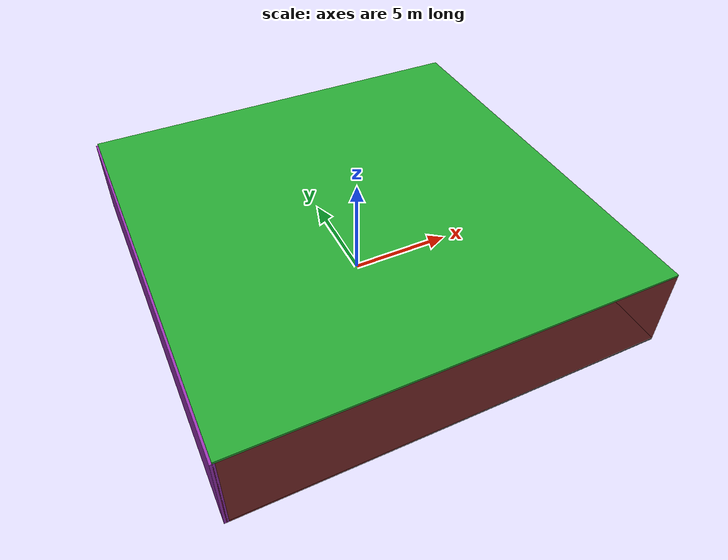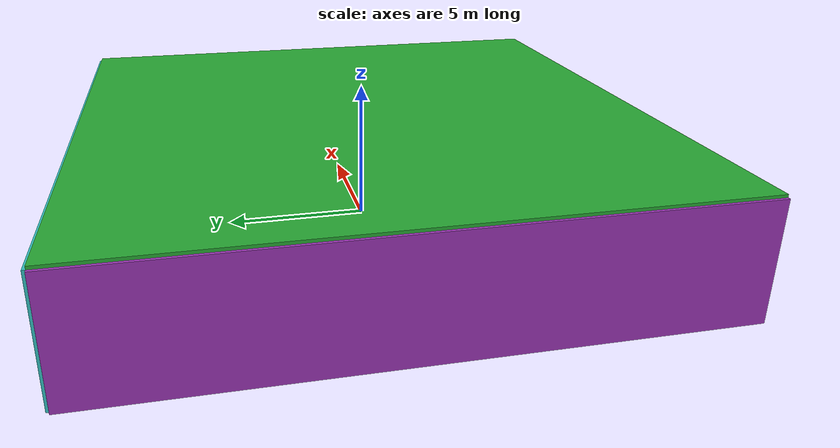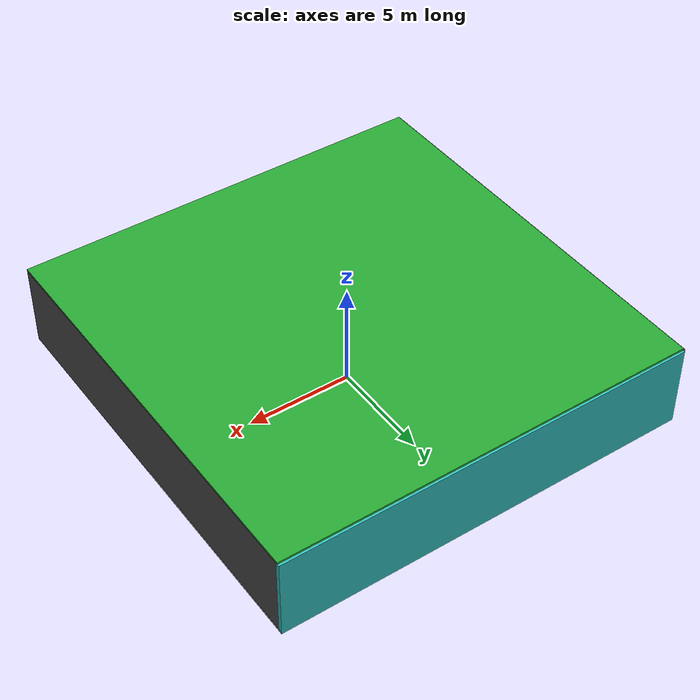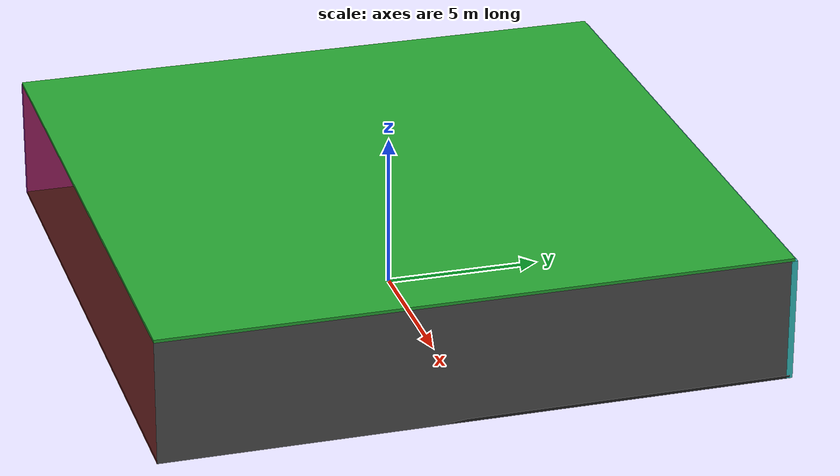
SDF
<sdf version="1.4">
 <world name="default">
  <physics type="ode">
   <max_step_size>0.001</max_step_size>
   <real_time_factor>1</real_time_factor>
   <real_time_update_rate>1000</real_time_update_rate>
   <gravity>0 0 -9.8</gravity>
  </physics>
  <scene><ambient>0.4 0.4 0.4 1</ambient><background>0.7 0.7 0.7 1</background><shadows>1</shadows></scene>
  <model name="Surrounding">
   <static>1</static>
   <link name="Ceiling">
    <collision name="Ceiling_Collision"><geometry><box><size>20 20 0.1</size></box></geometry></collision>
    <visual name="Ceiling_Visual">
     <geometry><box><size>20 20 0.1</size></box></geometry>
     <material>
      <script><uri>file://media/materials/scripts/gazebo.material</uri><name>Gazebo/Green</name></script>
     </material>
    </visual>
    <pose>0 0 4.05 0 0 0</pose>
   </link>
   <link name="Wall_South">
    <collision name="Wall_South_Collision">
     <geometry><box><size>20 0 4</size></box></geometry>
     <pose>0 0 2 0 -0 0</pose>
    </collision>
    <visual name="Wall_South_Visual">
     <pose>0 0 2 0 -0 0</pose>
     <geometry><box><size>20 0 4</size></box></geometry>
     <material>
      <script><uri>file://media/materials/scripts/gazebo.material</uri><name>Gazebo/RedTransparent</name></script>
     </material>
    </visual>
    <velocity_decay><linear>0</linear><angular>0</angular></velocity_decay>
    <pose>0 -10 0 0 -0 0</pose>
   </link>
   <link name="Wall_East">
    <collision name="Wall_21_Collision">
     <geometry><box><size>20 0 4</size></box></geometry>
     <pose>0 0 2 0 -0 0</pose>
    </collision>
    <visual name="Wall_21_Visual">
     <pose>0 0 2 0 -0 0</pose>
     <geometry><box><size>20 0 4</size></box></geometry>
     <material>
      <script><uri>file://media/materials/scripts/gazebo.material</uri><name>Gazebo/Road</name></script>
     </material>
    </visual>
    <velocity_decay><linear>0</linear><angular>0</angular></velocity_decay>
    <pose>10 0 0 0 -0 1.5708</pose>
   </link>
   <link name="Wall_North">
    <collision name="Wall_22_Collision">
     <geometry><box><size>20 0.2 4</size></box></geometry>
     <pose>0 0 2 0 -0 0</pose>
    </collision>
    <visual name="Wall_22_Visual">
     <pose>0 0 2 0 -0 0</pose>
     <geometry><box><size>20 0.2 4</size></box></geometry>
     <material>
      <script><uri>file://media/materials/scripts/gazebo.material</uri><name>Gazebo/Turquoise</name></script>
     </material>
    </visual>
    <velocity_decay><linear>0</linear><angular>0</angular></velocity_decay>
    <pose>0 10 0 0 -0 0</pose>
   </link>
   <link name="Wall_West">
    <collision name="Wall_23_Collision">
     <geometry><box><size>20 0.2 4</size></box></geometry>
     <pose>0 0 2 0 -0 0</pose>
    </collision>
    <visual name="Wall_23_Visual">
     <pose>0 0 2 0 -0 0</pose>
     <geometry><box><size>20 0.2 4</size></box></geometry>
     <material>
      <script><uri>file://media/materials/scripts/gazebo.material</uri><name>Gazebo/PurpleGlow</name></script>
     </material>
    </visual>
    <velocity_decay><linear>0</linear><angular>0</angular></velocity_decay>
    <pose>-10 0 0 0 0 -1.5708</pose>
   </link>
   <link name="Ground_link">
    <collision name="collision">
     <pose>0 0 .05 0 -0 0</pose>
     <geometry><box><size>20 20 0.1</size></box></geometry>
    </collision>
    <visual name="visual">
     <pose>0 0 .05 0 -0 0</pose>
     <geometry><box><size>20 20 0.1</size></box></geometry>
     <material>
      <script><uri>file://media/materials/scripts/gazebo.material</uri><name>Gazebo/FlatBlack</name></script>
     </material>
    </visual>
   </link>
   <static>1</static>
  </model>
  <spherical_coordinates>
   <surface_model>EARTH_WGS84</surface_model>
   <latitude_deg>0</latitude_deg>
   <longitude_deg>0</longitude_deg>
   <elevation>0</elevation>
   <heading_deg>0</heading_deg>
  </spherical_coordinates>
  <light name="lightball_0" type="diffuse">
   <diffuse>0.8 0.8 0.8 1</diffuse>
   <specular>0.2 0.2 0.2 1</specular>
   <attenuation>
    <range>100</range>
    <constant>0.7</constant>
    <linear>0.01</linear>
    <quadratic>0.001</quadratic>
   </attenuation>
   <direction>-0.5 0.1 -0.9</direction>
   <pose>-1.21242674009 6.51069639433 0.915281545872 0 0 0</pose>
  </light>
  <light name="lightball_1" type="diffuse">
   <diffuse>0.8 0.8 0.8 1</diffuse>
   <specular>0.2 0.2 0.2 1</specular>
   <attenuation>
    <range>100</range>
    <constant>0.7</constant>
    <linear>0.01</linear>
    <quadratic>0.001</quadratic>
   </attenuation>
   <direction>-0.5 0.1 -0.9</direction>
   <pose>2.01865969181 -3.58375234735 0.77255636511 0 0 0</pose>
  </light>
  <light name="lightball_2" type="diffuse">
   <diffuse>0.8 0.8 0.8 1</diffuse>
   <specular>0.2 0.2 0.2 1</specular>
   <attenuation>
    <range>100</range>
    <constant>0.7</constant>
    <linear>0.01</linear>
    <quadratic>0.001</quadratic>
   </attenuation>
   <direction>-0.5 0.1 -0.9</direction>
   <pose>4.53639469768 0.46385578748 2.76397135332 0 0 0</pose>
  </light>
  <light name="lightball_3" type="diffuse">
   <diffuse>0.8 0.8 0.8 1</diffuse>
   <specular>0.2 0.2 0.2 1</specular>
   <attenuation>
    <range>100</range>
    <constant>0.7</constant>
    <linear>0.01</linear>
    <quadratic>0.001</quadratic>
   </attenuation>
   <direction>-0.5 0.1 -0.9</direction>
   <pose>0.744879732484 -6.01894620935 0.834733339027 0 0 0</pose>
  </light>
  <light name="lightball_4" type="diffuse">
   <diffuse>0.8 0.8 0.8 1</diffuse>
   <specular>0.2 0.2 0.2 1</specular>
   <attenuation>
    <range>100</range>
    <constant>0.7</constant>
    <linear>0.01</linear>
    <quadratic>0.001</quadratic>
   </attenuation>
   <direction>-0.5 0.1 -0.9</direction>
   <pose>5.48320185485 8.25465371629 2.49578322041 0 0 0</pose>
  </light>
  <light name="lightball_5" type="diffuse">
   <diffuse>0.8 0.8 0.8 1</diffuse>
   <specular>0.2 0.2 0.2 1</specular>
   <attenuation>
    <range>100</range>
    <constant>0.7</constant>
    <linear>0.01</linear>
    <quadratic>0.001</quadratic>
   </attenuation>
   <direction>-0.5 0.1 -0.9</direction>
   <pose>-6.22372993371 0.949158138567 3.54133624613 0 0 0</pose>
  </light>
  <light name="lightball_6" type="diffuse">
   <diffuse>0.8 0.8 0.8 1</diffuse>
   <specular>0.2 0.2 0.2 1</specular>
   <attenuation>
    <range>100</range>
    <constant>0.7</constant>
    <linear>0.01</linear>
    <quadratic>0.001</quadratic>
   </attenuation>
   <direction>-0.5 0.1 -0.9</direction>
   <pose>6.02715509572 -3.55100452219 2.0982716649 0 0 0</pose>
  </light>
  <light name="lightball_7" type="diffuse">
   <diffuse>0.8 0.8 0.8 1</diffuse>
   <specular>0.2 0.2 0.2 1</specular>
   <attenuation>
    <range>100</range>
    <constant>0.7</constant>
    <linear>0.01</linear>
    <quadratic>0.001</quadratic>
   </attenuation>
   <direction>-0.5 0.1 -0.9</direction>
   <pose>2.95627477746 2.01881203446 0.556269125849 0 0 0</pose>
  </light>
  <light name="lightball_8" type="diffuse">
   <diffuse>0.8 0.8 0.8 1</diffuse>
   <specular>0.2 0.2 0.2 1</specular>
   <attenuation>
    <range>100</range>
    <constant>0.7</constant>
    <linear>0.01</linear>
    <quadratic>0.001</quadratic>
   </attenuation>
   <direction>-0.5 0.1 -0.9</direction>
   <pose>-2.23007203394 -5.49475224556 0.857729389752 0 0 0</pose>
  </light>
  <light name="lightball_9" type="diffuse">
   <diffuse>0.8 0.8 0.8 1</diffuse>
   <specular>0.2 0.2 0.2 1</specular>
   <attenuation>
    <range>100</range>
    <constant>0.7</constant>
    <linear>0.01</linear>
    <quadratic>0.001</quadratic>
   </attenuation>
   <direction>-0.5 0.1 -0.9</direction>
   <pose>1.33891438068 -0.467253980417 1.8291021454 0 0 0</pose>
  </light>
  <light name="lightball_10" type="diffuse">
   <diffuse>0.8 0.8 0.8 1</diffuse>
   <specular>0.2 0.2 0.2 1</specular>
   <attenuation>
    <range>100</range>
    <constant>0.7</constant>
    <linear>0.01</linear>
    <quadratic>0.001</quadratic>
   </attenuation>
   <direction>-0.5 0.1 -0.9</direction>
   <pose>-8.7421051386 3.79508449256 2.93032066715 0 0 0</pose>
  </light>
  <include>
   <uri>model://construction_cone</uri>
   <pose>-4.6783087206 7.53975615854 0 0 0 3.0970530738</pose>
  </include>
  <include><uri>model://cabinet</uri><pose>2.1435541425 6.57027229953 0 0 0 0.0361001471914</pose></include>
  <include>
   <uri>model://robocup_3Dsim_goal</uri>
   <pose>6.53349056134 5.27090706775 0 0 0 2.04644629153</pose>
  </include>
 </world>
</sdf>

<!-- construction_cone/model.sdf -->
<sdf version="1.5">
  <model name="Construction Cone">
    <link name="link">
      <collision name="collision">
        <geometry>
          <mesh>
            <scale>10 10 10</scale>
            <uri>file://isr-testbed/construction_cone/meshes/construction_cone.dae</uri>
          </mesh>
        </geometry>
      </collision>
      <visual name="visual">
        <geometry>
          <mesh>
            <scale>10 10 10</scale>
            <uri>file://isr-testbed/construction_cone/meshes/construction_cone.dae</uri>
          </mesh>
        </geometry>
      </visual>
    </link>
  </model>
</sdf>

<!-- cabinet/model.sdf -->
<sdf version="1.5">
  <model name="cabinet">
    <static>true</static>
    <link name="cabinet_bottom_plate">
      <inertial>
        <pose>0 0 -1 0 0 0</pose>
        <inertia>
          <ixx>2.050000</ixx>
          <ixy>0</ixy>
          <ixz>0</ixz>
          <iyy>2.050000</iyy>
          <iyz>0</iyz>
          <izz>2.050000</izz>
        </inertia>
        <mass>25.000000</mass>
      </inertial>
      <collision name="cabinet_bottom_plate_geom">
        <pose>0 0 0.010000 0 0 0</pose>
        <geometry>
          <box>
            <size>0.450000 0.450000 0.020000</size>
          </box>
        </geometry>
      </collision>
      <visual name="cabinet_bottom_plate_geom_visual">
        <pose>0 0 0.010000 0 0 0</pose>
        <geometry>
          <box>
            <size>0.450000 0.450000 0.020000</size>
          </box>
        </geometry>
        <material>
          <script>
            <uri>model://media/materials/scripts/gazebo.material</uri>
            <name>Gazebo/Wood</name>
          </script>
        </material>
      </visual>
      <collision name="cabinet_bottom_plate_geom_cabinet_back_plate">
        <pose>0.235000 0 0.510000 0 0 0</pose>
        <geometry>
          <box>
            <size>0.020000 0.450000 1.020000</size>
          </box>
        </geometry>
      </collision>
      <visual name="cabinet_bottom_plate_geom_cabinet_back_plate_visual">
        <pose>0.235000 0 0.510000 0 0 0</pose>
        <geometry>
          <box>
            <size>0.020000 0.450000 1.020000</size>
          </box>
        </geometry>
        <material>
          <script>
            <uri>model://media/materials/scripts/gazebo.material</uri>
            <name>Gazebo/Wood</name>
          </script>
        </material>
      </visual>
      <collision name="cabinet_bottom_plate_geom_cabinet_left_plate">
        <pose>0 0.235000 0.510000 0 0 0</pose>
        <geometry>
          <box>
            <size>0.450000 0.020000 1.020000</size>
          </box>
        </geometry>
      </collision>
      <visual name="cabinet_bottom_plate_geom_cabinet_left_plate_visual">
        <pose>0 0.235000 0.510000 0 0 0</pose>
        <geometry>
          <box>
            <size>0.450000 0.020000 1.020000</size>
          </box>
        </geometry>
        <material>
          <script>
            <uri>model://media/materials/scripts/gazebo.material</uri>
            <name>Gazebo/Wood</name>
          </script>
        </material>
      </visual>
      <collision name="cabinet_bottom_plate_geom_cabinet_middle_plate">
        <pose>0 0 0.510000 0 0 0</pose>
        <geometry>
          <box>
            <size>0.450000 0.450000 0.020000</size>
          </box>
        </geometry>
      </collision>
      <visual name="cabinet_bottom_plate_geom_cabinet_middle_plate_visual">
        <pose>0 0 0.510000 0 0 0</pose>
        <geometry>
          <box>
            <size>0.450000 0.450000 0.020000</size>
          </box>
        </geometry>
        <material>
          <script>
            <uri>model://media/materials/scripts/gazebo.material</uri>
            <name>Gazebo/Wood</name>
          </script>
        </material>
      </visual>
      <collision name="cabinet_bottom_plate_geom_cabinet_right_plate">
        <pose>0 -0.235000 0.510000 0 0 0</pose>
        <geometry>
          <box>
            <size>0.450000 0.020000 1.020000</size>
          </box>
        </geometry>
      </collision>
      <visual name="cabinet_bottom_plate_geom_cabinet_right_plate_visual">
        <pose>0 -0.235000 0.510000 0 0 0</pose>
        <geometry>
          <box>
            <size>0.450000 0.020000 1.020000</size>
          </box>
        </geometry>
        <material>
          <script>
            <uri>model://media/materials/scripts/gazebo.material</uri>
            <name>Gazebo/Wood</name>
          </script>
        </material>
      </visual>
      <collision name="cabinet_bottom_plate_geom_cabinet_top_plate">
        <pose>0 0 1.010000 0 0 0</pose>
        <geometry>
          <box>
            <size>0.450000 0.450000 0.020000</size>
          </box>
        </geometry>
      </collision>
      <visual name="cabinet_bottom_plate_geom_cabinet_top_plate_visual">
        <pose>0 0 1.010000 0 0 0</pose>
        <geometry>
          <box>
            <size>0.450000 0.450000 0.020000</size>
          </box>
        </geometry>
        <material>
          <script>
            <uri>model://media/materials/scripts/gazebo.material</uri>
            <name>Gazebo/Wood</name>
          </script>
        </material>
      </visual>
    </link>
  </model>
</sdf>

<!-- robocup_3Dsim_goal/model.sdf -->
<sdf version="1.5">
  <model name="robocup_3d_goal">
    <static>true</static>
    <link name="left_post">
      <pose>0 1.05 0.45 0 0 0</pose>
      <collision name="collision">
        <geometry>
          <cylinder>
            <radius>0.05</radius>
            <length>0.9</length>
          </cylinder>
        </geometry>
      </collision>
      <visual name="visual">
        <geometry>
          <cylinder>
            <radius>0.05</radius>
            <length>0.9</length>
          </cylinder>
        </geometry>
        <material>
          <script>
            <uri>file://media/materials/scripts/gazebo.material</uri>
            <name>Gazebo/ZincYellow</name>
          </script>
        </material>
      </visual>
    </link>
    <link name="left_support_horiz_lower">
      <pose>0.30 1.05 0.01 0 0 0</pose>
      <collision name="collision">
        <geometry>
          <box>
            <size>0.50 0.02 0.02</size>
          </box>
        </geometry>
      </collision>
      <visual name="visual">
        <geometry>
          <box>
            <size>0.50 0.02 0.02</size>
          </box>
        </geometry>
        <material>
          <script>
            <uri>file://media/materials/scripts/gazebo.material</uri>
            <name>Gazebo/White</name>
          </script>
        </material>
      </visual>
    </link>
    <link name="left_support_horiz_upper">
      <pose>0.30 1.05 0.79 0 0 0</pose>
      <collision name="collision">
        <geometry>
          <box>
            <size>0.50 0.02 0.02</size>
          </box>
        </geometry>
      </collision>
      <visual name="visual">
        <geometry>
          <box>
            <size>0.50 0.02 0.02</size>
          </box>
        </geometry>
        <material>
          <script>
            <uri>file://media/materials/scripts/gazebo.material</uri>
            <name>Gazebo/White</name>
          </script>
        </material>
      </visual>
    </link>
    <link name="left_support_vertical">
      <pose>0.56 1.05 0.4 0 1.5708 0</pose>
      <collision name="collision">
        <geometry>
          <box>
            <size>0.80 0.02 0.02</size>
          </box>
        </geometry>
      </collision>
      <visual name="visual">
        <geometry>
          <box>
            <size>0.80 0.02 0.02</size>
          </box>
        </geometry>
        <material>
          <script>
            <uri>file://media/materials/scripts/gazebo.material</uri>
            <name>Gazebo/White</name>
          </script>
        </material>
      </visual>
    </link>
    <link name="right_support_horiz_lower">
      <pose>0.30 -1.05 0.01 0 0 0</pose>
      <collision name="collision">
        <geometry>
          <box>
            <size>0.50 0.02 0.02</size>
          </box>
        </geometry>
      </collision>
      <visual name="visual">
        <geometry>
          <box>
            <size>0.50 0.02 0.02</size>
          </box>
        </geometry>
        <material>
          <script>
            <uri>file://media/materials/scripts/gazebo.material</uri>
            <name>Gazebo/White</name>
          </script>
        </material>
      </visual>
    </link>
    <link name="right_support_horiz_upper">
      <pose>0.30 -1.05 0.79 0 0 0</pose>
      <collision name="collision">
        <geometry>
          <box>
            <size>0.50 0.02 0.02</size>
          </box>
        </geometry>
      </collision>
      <visual name="visual">
        <geometry>
          <box>
            <size>0.50 0.02 0.02</size>
          </box>
        </geometry>
        <material>
          <script>
            <uri>file://media/materials/scripts/gazebo.material</uri>
            <name>Gazebo/White</name>
          </script>
        </material>
      </visual>
    </link>
    <link name="right_support_vertical">
      <pose>0.56 -1.05 0.4 0 1.5708 0</pose>
      <collision name="collision">
        <geometry>
          <box>
            <size>0.80 0.02 0.02</size>
          </box>
        </geometry>
      </collision>
      <visual name="visual">
        <geometry>
          <box>
            <size>0.80 0.02 0.02</size>
          </box>
        </geometry>
        <material>
          <script>
            <uri>file://media/materials/scripts/gazebo.material</uri>
            <name>Gazebo/White</name>
          </script>
        </material>
      </visual>
    </link>
    <link name="center_support_horiz_lower">
      <pose>0.56 0 0.01 0 1.5708 0</pose>
      <collision name="collision">
        <geometry>
          <box>
            <size>0.02 2.08 0.02</size>
          </box>
        </geometry>
      </collision>
      <visual name="visual">
        <geometry>
          <box>
            <size>0.02 2.08 0.02</size>
          </box>
        </geometry>
        <material>
          <script>
            <uri>file://media/materials/scripts/gazebo.material</uri>
            <name>Gazebo/White</name>
          </script>
        </material>
      </visual>
    </link>
    <link name="center_support_horiz_upper">
      <pose>0.56 0 0.79 0 1.5708 0</pose>
      <collision name="collision">
        <geometry>
          <box>
            <size>0.02 2.08 0.02</size>
          </box>
        </geometry>
      </collision>
      <visual name="visual">
        <geometry>
          <box>
            <size>0.02 2.08 0.02</size>
          </box>
        </geometry>
        <material>
          <script>
            <uri>file://media/materials/scripts/gazebo.material</uri>
            <name>Gazebo/White</name>
          </script>
        </material>
      </visual>
    </link>
    <link name="right_post">
      <pose>0 -1.05 0.45 0 0 0</pose>
      <collision name="collision">
        <geometry>
          <cylinder>
            <radius>0.05</radius>
            <length>0.9</length>
          </cylinder>
        </geometry>
      </collision>
      <visual name="visual">
        <geometry>
          <cylinder>
            <radius>0.05</radius>
            <length>0.9</length>
          </cylinder>
        </geometry>
        <material>
          <script>
            <uri>file://media/materials/scripts/gazebo.material</uri>
            <name>Gazebo/ZincYellow</name>
          </script>
        </material>
      </visual>
    </link>
    <link name="crossbar">
      <pose>0 0 0.85 1.57 1.57 0</pose>
      <collision name="collision">
        <geometry>
          <cylinder>
            <radius>0.05</radius>
            <length>2.0</length>
          </cylinder>
        </geometry>
      </collision>
      <visual name="visual">
        <geometry>
          <cylinder>
            <radius>0.05</radius>
            <length>2.0</length>
          </cylinder>
        </geometry>
        <material>
          <script>
            <uri>file://media/materials/scripts/gazebo.material</uri>
            <name>Gazebo/ZincYellow</name>
          </script>
        </material>
      </visual>
    </link>
    <link name="center_net">
      <pose>0.56 0 0.40 0 0 0</pose>
      <collision name="collision">
        <geometry>
          <box>
            <size>0.01 2.1 0.80</size>
          </box>
        </geometry>
      </collision>
      <visual name="visual">
        <geometry>
          <box>
            <size>0.01 2.1 0.80</size>
          </box>
        </geometry>
        <material>
          <script>
            <uri>model://../model_source/models/robocup09_spl_field/materials/scripts/</uri>
            <uri>model://../model_source/models/robocup09_spl_field/materials/textures/</uri>
            <name>RoboCup/Net</name>
          </script>
        </material>
      </visual>
    </link>
    <link name="left_net">
      <pose>0.30 1.05 0.40 0 0 0</pose>
      <collision name="collision">
        <geometry>
          <box>
            <size>0.50 0.01 0.76</size>
          </box>
        </geometry>
      </collision>
      <visual name="visual">
        <geometry>
          <box>
            <size>0.50 0.01 0.76</size>
          </box>
        </geometry>
        <material>
          <script>
            <uri>model://../model_source/models/robocup09_spl_field/materials/scripts/</uri>
            <uri>model://../model_source/models/robocup09_spl_field/materials/textures/</uri>
            <name>RoboCup/Net</name>
          </script>
        </material>
      </visual>
    </link>
    <link name="right_net">
      <pose>0.30 -1.05 0.40 0 0 0</pose>
      <collision name="collision">
        <geometry>
          <box>
            <size>0.50 0.01 0.76</size>
          </box>
        </geometry>
      </collision>
      <visual name="visual">
        <geometry>
          <box>
            <size>0.50 0.01 0.76</size>
          </box>
        </geometry>
        <material>
          <script>
            <uri>model://../model_source/models/robocup09_spl_field/materials/scripts/</uri>
            <uri>model://../model_source/models/robocup09_spl_field/materials/textures/</uri>
            <name>RoboCup/Net</name>
          </script>
        </material>
      </visual>
    </link>
  </model>
</sdf>
